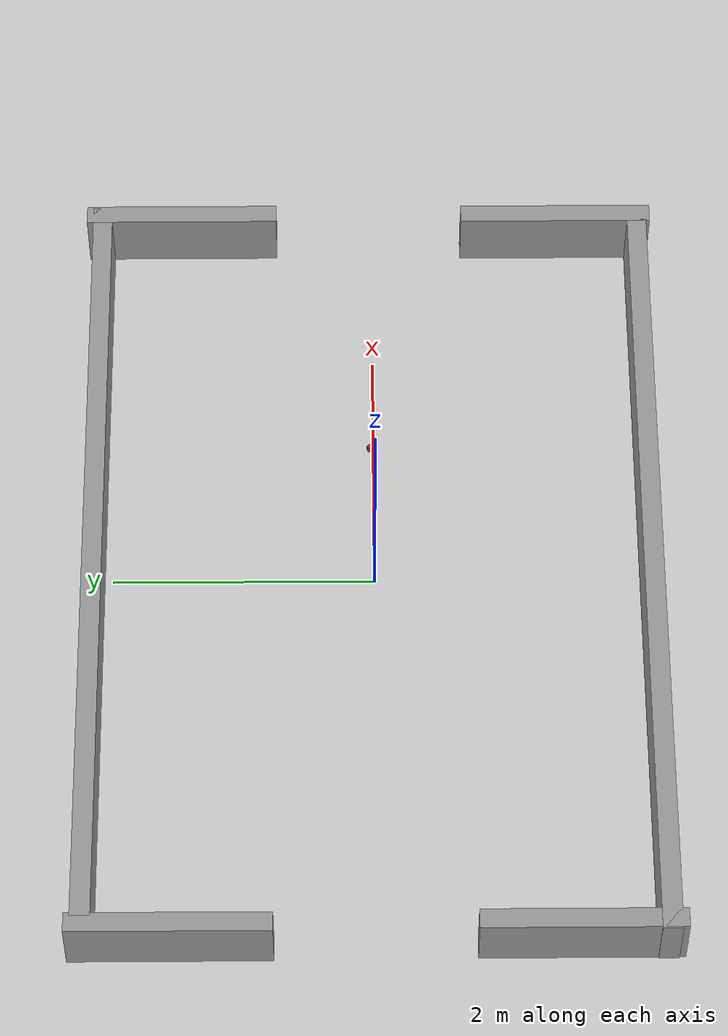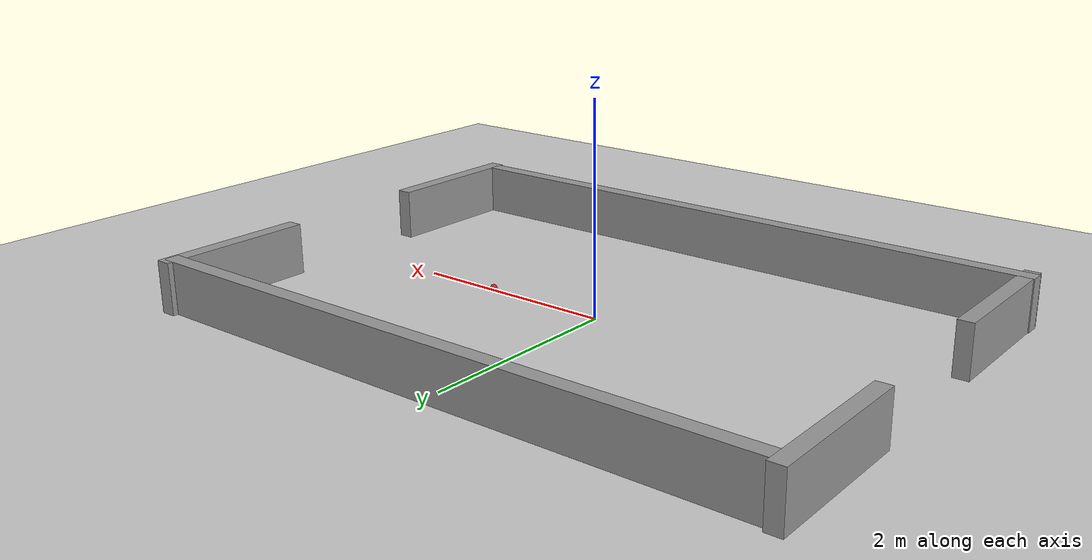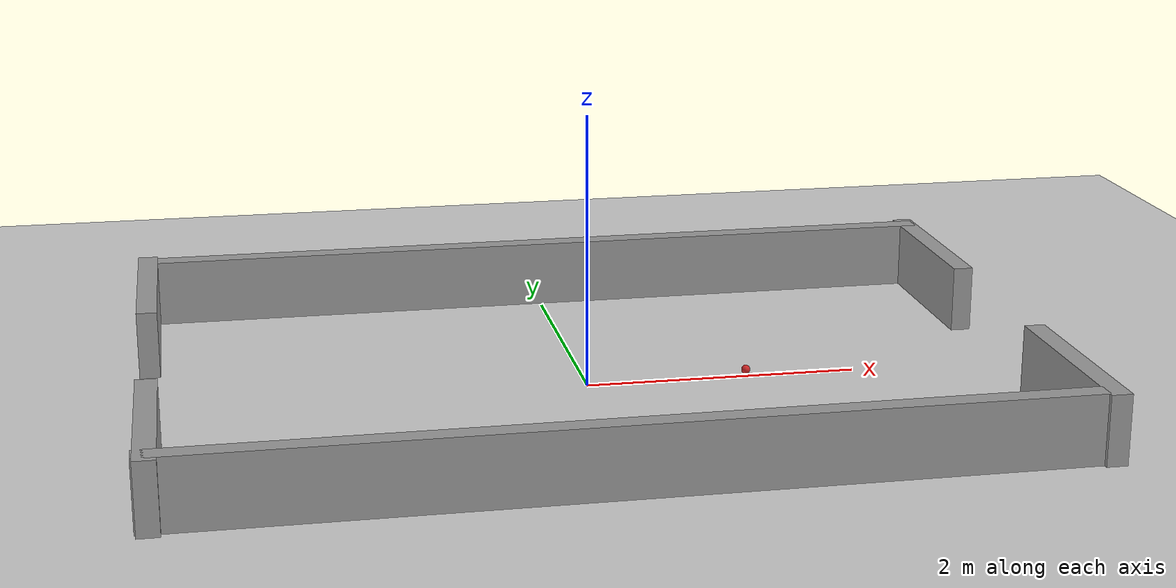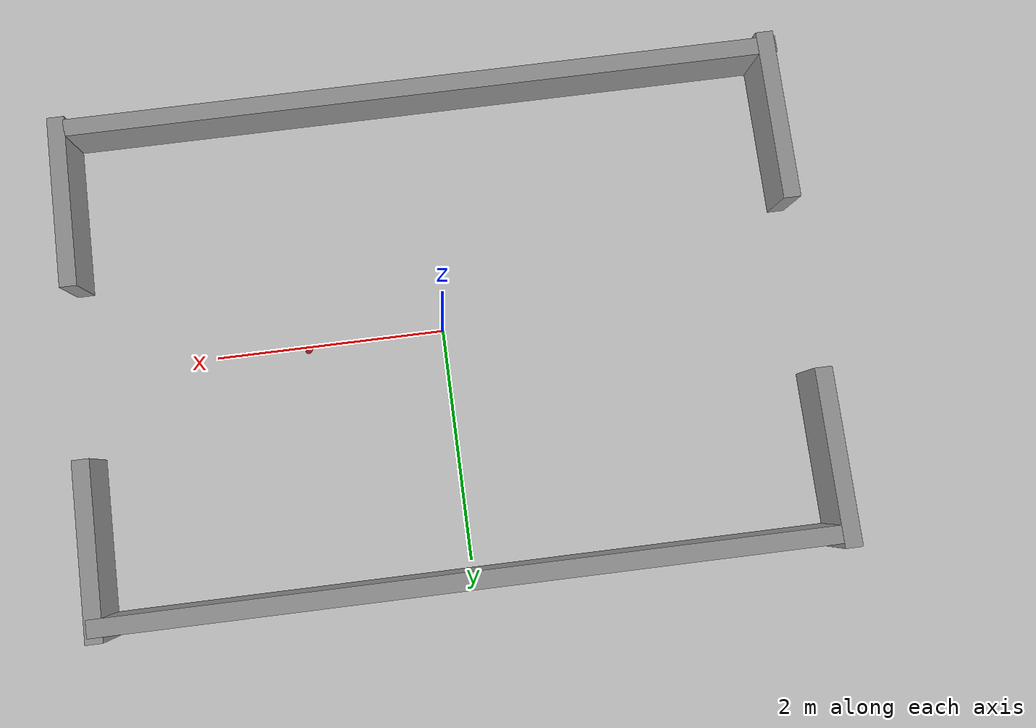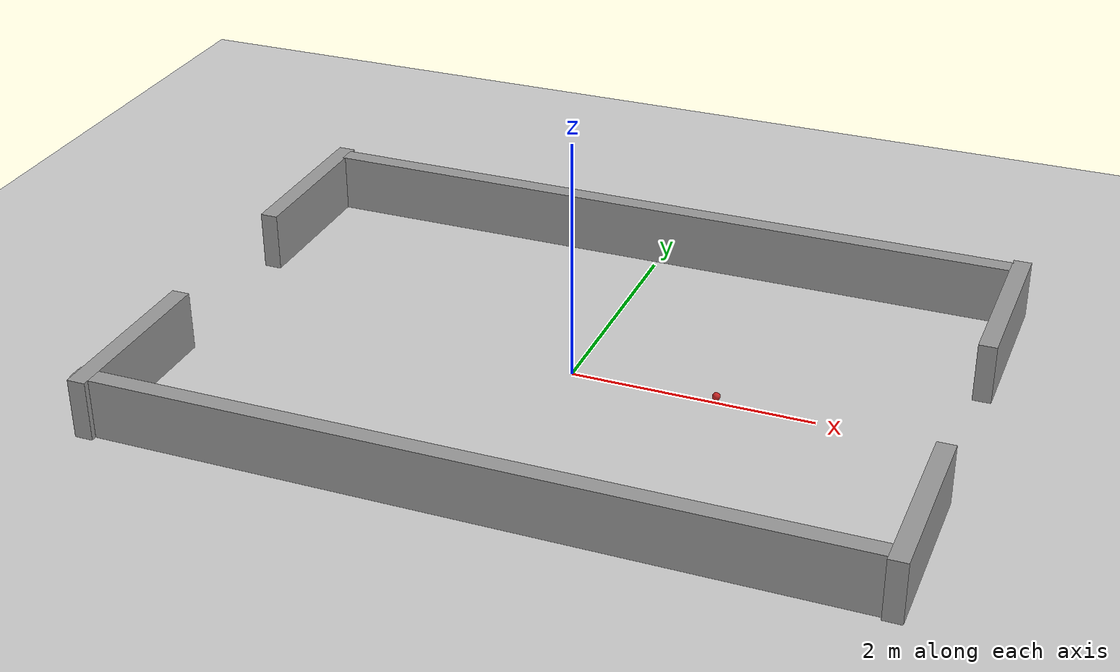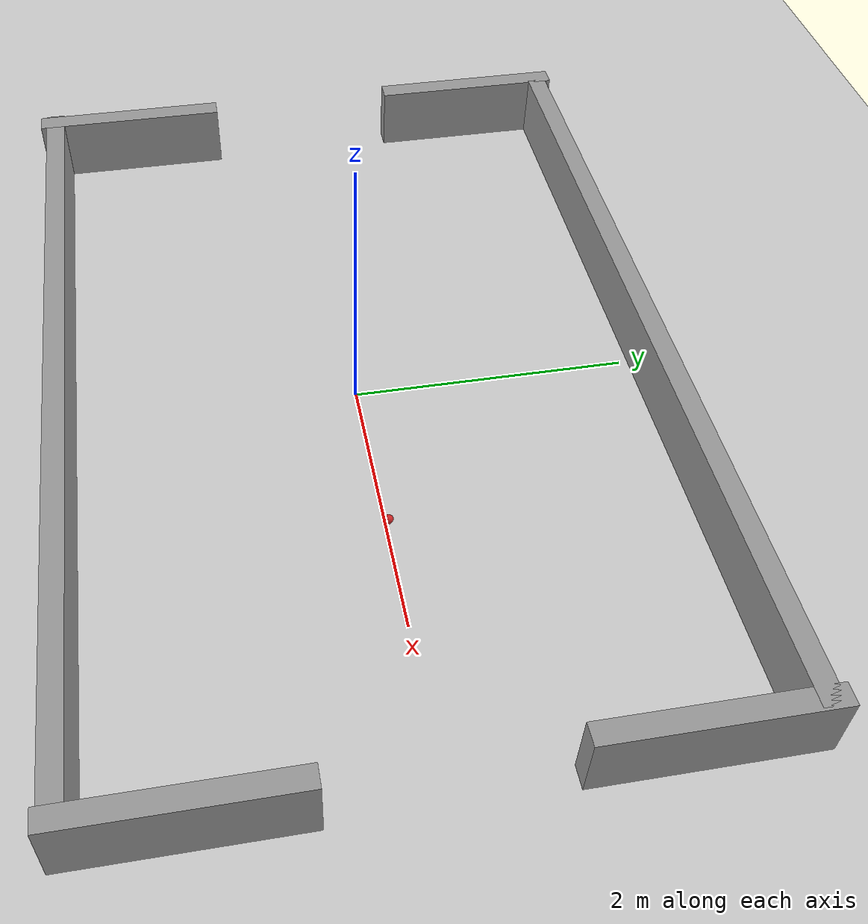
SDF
<sdf version="1.7">
 <world name="default">
  <light name="sun" type="directional">
   <pose>0 0 10 0 -0 0</pose>
   <diffuse>0.8 0.8 0.8 1</diffuse>
   <specular>0.2 0.2 0.2 1</specular>
   <attenuation>
    <range>1000</range>
    <constant>0.9</constant>
    <linear>0.01</linear>
    <quadratic>0.001</quadratic>
   </attenuation>
   <direction>-0.5 0.1 -0.9</direction>
   <spot><inner_angle>0</inner_angle><outer_angle>0</outer_angle><falloff>0</falloff></spot>
  </light>
  <model name="ground_plane">
   <static>1</static>
   <link name="link">
    <collision name="collision">
     <geometry><plane><normal>0 0 1</normal><size>100 100</size></plane></geometry>
     <surface>
      <contact><collide_bitmask>65535</collide_bitmask></contact>
      <friction><ode><mu>100</mu><mu2>50</mu2></ode></friction>
     </surface>
    </collision>
    <visual name="visual">
     <cast_shadows>0</cast_shadows>
     <geometry><plane><normal>0 0 1</normal><size>100 100</size></plane></geometry>
     <material>
      <script><uri>file://media/materials/scripts/gazebo.material</uri><name>Gazebo/Grey</name></script>
     </material>
    </visual>
   </link>
  </model>
  <gravity>0 0 -9.8</gravity>
  <magnetic_field>6e-06 2.3e-05 -4.2e-05</magnetic_field>
  <atmosphere type="adiabatic"/>
  <physics type="ode">
   <max_step_size>0.001</max_step_size>
   <real_time_factor>1</real_time_factor>
   <real_time_update_rate>1000</real_time_update_rate>
  </physics>
  <scene><ambient>0.4 0.4 0.4 1</ambient><background>0.7 0.7 0.7 1</background><shadows>1</shadows></scene>
  <spherical_coordinates>
   <surface_model>EARTH_WGS84</surface_model>
   <latitude_deg>0</latitude_deg>
   <longitude_deg>0</longitude_deg>
   <elevation>0</elevation>
   <heading_deg>0</heading_deg>
  </spherical_coordinates>
  <model name="Untitled">
   <pose>0.002 0.01992 0 0 -0 0</pose>
   <link name="Wall_0">
    <collision name="Wall_0_Collision">
     <geometry><box><size>1.5 0.15 0.5</size></box></geometry>
     <pose>0 0 0.25 0 -0 0</pose>
    </collision>
    <visual name="Wall_0_Visual">
     <pose>0 0 0.25 0 -0 0</pose>
     <geometry><box><size>1.5 0.15 0.5</size></box></geometry>
     <material>
      <script><uri>file://media/materials/scripts/gazebo.material</uri><name>Gazebo/Grey</name></script>
      <ambient>0 0 0 1</ambient>
     </material>
     <meta><layer>0</layer></meta>
    </visual>
    <pose>-3.11246 -1.49208 0 0 -0 1.5708</pose>
   </link>
   <link name="Wall_10">
    <collision name="Wall_10_Collision">
     <geometry><box><size>1.5 0.15 0.5</size></box></geometry>
     <pose>0 0 0.25 0 -0 0</pose>
    </collision>
    <visual name="Wall_10_Visual">
     <pose>0 0 0.25 0 -0 0</pose>
     <geometry><box><size>1.5 0.15 0.5</size></box></geometry>
     <material>
      <script><uri>file://media/materials/scripts/gazebo.material</uri><name>Gazebo/Grey</name></script>
      <ambient>0 0 0 1</ambient>
     </material>
     <meta><layer>0</layer></meta>
    </visual>
    <pose>3.115 -1.47492 0 0 -0 -1.5708</pose>
   </link>
   <link name="Wall_2">
    <collision name="Wall_2_Collision">
     <geometry><box><size>1.5 0.15 0.5</size></box></geometry>
     <pose>0 0 0.25 0 -0 0</pose>
    </collision>
    <visual name="Wall_2_Visual">
     <pose>0 0 0.25 0 -0 0</pose>
     <geometry><box><size>1.5 0.15 0.5</size></box></geometry>
     <material>
      <script><uri>file://media/materials/scripts/gazebo.material</uri><name>Gazebo/Grey</name></script>
      <ambient>0 0 0 1</ambient>
     </material>
     <meta><layer>0</layer></meta>
    </visual>
    <pose>-3.124 1.48508 0 0 -0 1.5708</pose>
   </link>
   <link name="Wall_4">
    <collision name="Wall_4_Collision">
     <geometry><box><size>6.25 0.15 0.5</size></box></geometry>
     <pose>0 0 0.25 0 -0 0</pose>
    </collision>
    <visual name="Wall_4_Visual">
     <pose>0 0 0.25 0 -0 0</pose>
     <geometry><box><size>6.25 0.15 0.5</size></box></geometry>
     <material>
      <script><uri>file://media/materials/scripts/gazebo.material</uri><name>Gazebo/Grey</name></script>
      <ambient>0 0 0 1</ambient>
     </material>
     <meta><layer>0</layer></meta>
    </visual>
    <pose>-0.073 -2.11992 0 0 -0 0</pose>
   </link>
   <link name="Wall_6">
    <collision name="Wall_6_Collision">
     <geometry><box><size>6.25 0.15 0.5</size></box></geometry>
     <pose>0 0 0.25 0 -0 0</pose>
    </collision>
    <visual name="Wall_6_Visual">
     <pose>0 0 0.25 0 -0 0</pose>
     <geometry><box><size>6.25 0.15 0.5</size></box></geometry>
     <material>
      <script><uri>file://media/materials/scripts/gazebo.material</uri><name>Gazebo/Grey</name></script>
      <ambient>0 0 0 1</ambient>
     </material>
     <meta><layer>0</layer></meta>
    </visual>
    <pose>0.056 2.11708 0 0 -0 0</pose>
   </link>
   <link name="Wall_8">
    <collision name="Wall_8_Collision">
     <geometry><box><size>1.5 0.15 0.5</size></box></geometry>
     <pose>0 0 0.25 0 -0 0</pose>
    </collision>
    <visual name="Wall_8_Visual">
     <pose>0 0 0.25 0 -0 0</pose>
     <geometry><box><size>1.5 0.15 0.5</size></box></geometry>
     <material>
      <script><uri>file://media/materials/scripts/gazebo.material</uri><name>Gazebo/Grey</name></script>
      <ambient>0 0 0 1</ambient>
     </material>
     <meta><layer>0</layer></meta>
    </visual>
    <pose>3.124 1.49208 0 0 -0 -1.5708</pose>
   </link>
   <static>1</static>
  </model>
  <model name="RoboCup SPL Ball">
   <static>0</static>
   <link name="ball">
    <inertial>
     <mass>0.0056</mass>
     <inertia>
      <ixx>2.37e-06</ixx>
      <iyy>2.37e-06</iyy>
      <izz>2.37e-06</izz>
      <ixy>0</ixy>
      <ixz>0</ixz>
      <iyz>0</iyz>
     </inertia>
    </inertial>
    <collision name="collision"><geometry><sphere><radius>0.0325</radius></sphere></geometry></collision>
    <visual name="visual">
     <geometry><sphere><radius>0.0325</radius></sphere></geometry>
     <material>
      <script><uri>file://media/materials/scripts/gazebo.material</uri><name>Gazebo/RedBright</name></script>
     </material>
    </visual>
   </link>
   <pose>1.19211 0.022459 0.0425 0 -0 0</pose>
  </model>
 </world>
</sdf>
